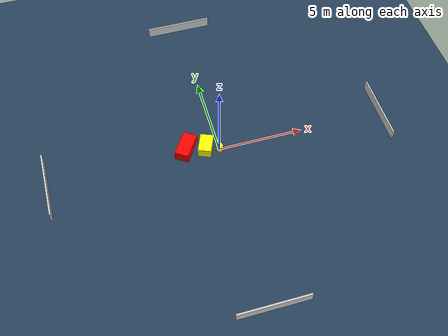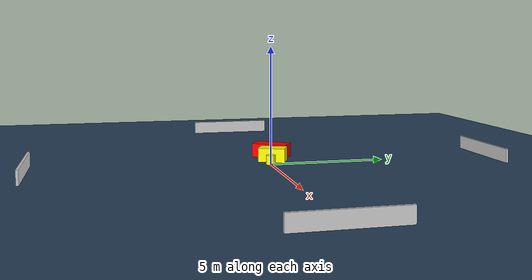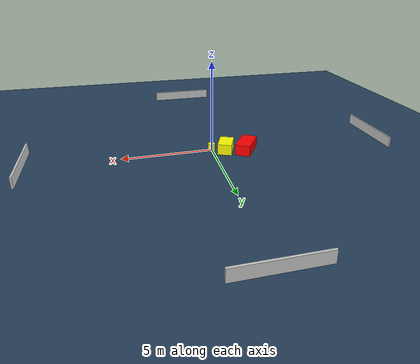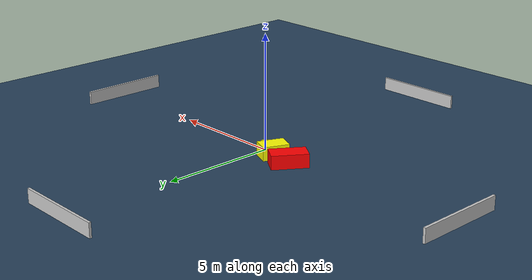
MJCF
<?xml version="1.0" ?>
<mujoco model="generated_environment">
  <option timestep="0.01" integrator="RK4" cone="elliptic"/>
  <default>
    <geom density="1"/>
  </default>
  <asset>
    <texture builtin="gradient" height="3072" name="skybox" rgb1="0.3 0.5 0.7" rgb2="0 0 0" type="skybox" width="512"/>
    <texture builtin="checker" height="300" name="groundplane" rgb1="0.2 0.3 0.4" rgb2="0.1 0.2 0.3" type="2d" width="300"/>
    <material name="groundplane" reflectance="0.2" texrepeat="5 5" texture="groundplane"/>
  </asset>
  <worldbody>
    <light dir="0 0 -1" directional="true" pos="0 0 1.5"/>
    <geom condim="3" friction="0.5 0.005 0.001" material="groundplane" name="floor" pos="0 0 0" size="0 0 0.05" type="plane"/>
    <body name="walls">
      <geom name="wall_1" condim="4" pos="-10.0 0.0 0.3" rgba="0.800000011920929 0.800000011920929 0.800000011920929 1.0" size="0.05 2.0 0.3" type="box"/>
      <geom name="wall_2" condim="4" pos="10.0 0.0 0.3" rgba="0.800000011920929 0.800000011920929 0.800000011920929 1.0" size="0.05 2.0 0.3" type="box"/>
      <geom name="wall_3" condim="4" pos="0.0 -10.0 0.3" rgba="0.800000011920929 0.800000011920929 0.800000011920929 1.0" size="2.0 0.05 0.3" type="box"/>
      <geom name="wall_4" condim="4" pos="0.0 10.0 0.3" rgba="0.800000011920929 0.800000011920929 0.800000011920929 1.0" size="2.0 0.05 0.3" type="box"/>
    </body>
    <body name="robot">
      <joint name="joint_x" type="slide" pos="0 0 0" axis="1 0 0"/>
      <joint name="joint_y" type="slide" pos="0 0 0" axis="0 1 0"/>
      <geom name="robot" type="cylinder" pos="0.0 0.0 0.2" size="0.2 0.2 0.0" mass="5.0" friction="1.0 0.005 0.0001" condim="4" rgba="1.0 1.0 0.0 1.0"/>
    </body>
    <body name="obstacle_1_movable">
      <geom name="obstacle_1_movable" condim="4" pos="-0.7517209583276833 0.26312451296572353 0.3" euler="0 0 157.42664536717157" friction="0.0 0.005 0.001" rgba="1.0 1.0 0.0 1.0" size="0.3844256037691439 0.5804295519773753 0.3" type="box" mass="0.1"/>
      <joint type="free"/>
    </body>
    <body name="obstacle_2_static">
      <geom name="obstacle_2_static" condim="4" pos="-1.8732040208590477 0.4754925825612816 0.3" euler="0 0 236.1774228337922" friction="0.0 0.005 0.001" rgba="1.0 0.0 0.0 1.0" size="0.7801214417323281 0.4090976090259746 0.3" type="box"/>
    </body>
  </worldbody>
  <actuator>
    <motor name="actuator_x" joint="joint_x" gear="1" ctrlrange="-1 1"/>
    <motor name="actuator_y" joint="joint_y" gear="1" ctrlrange="-1 1"/>
  </actuator>
</mujoco>
